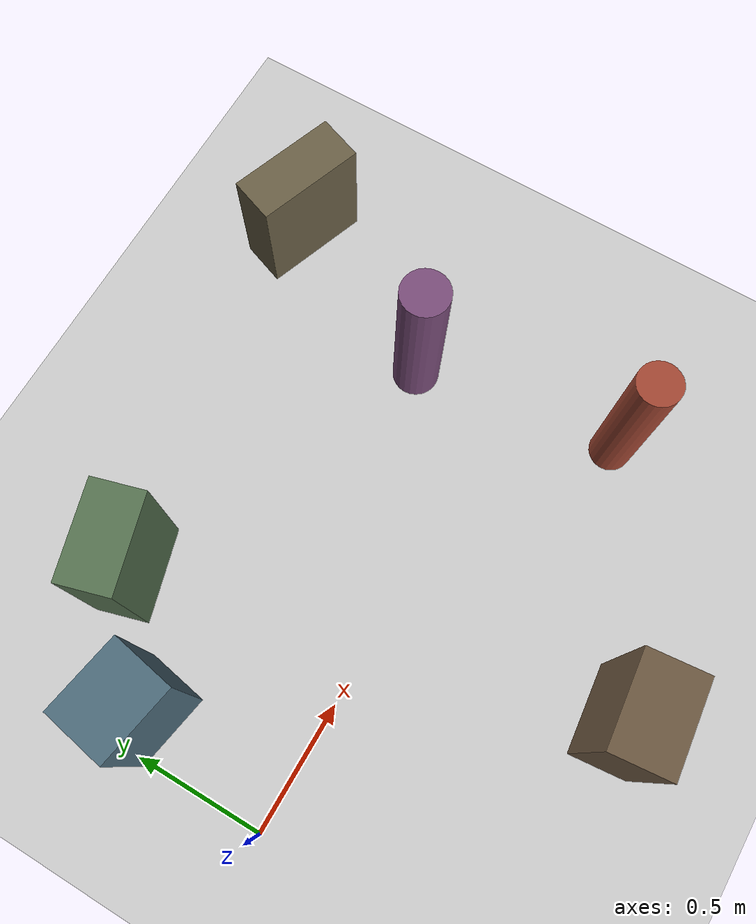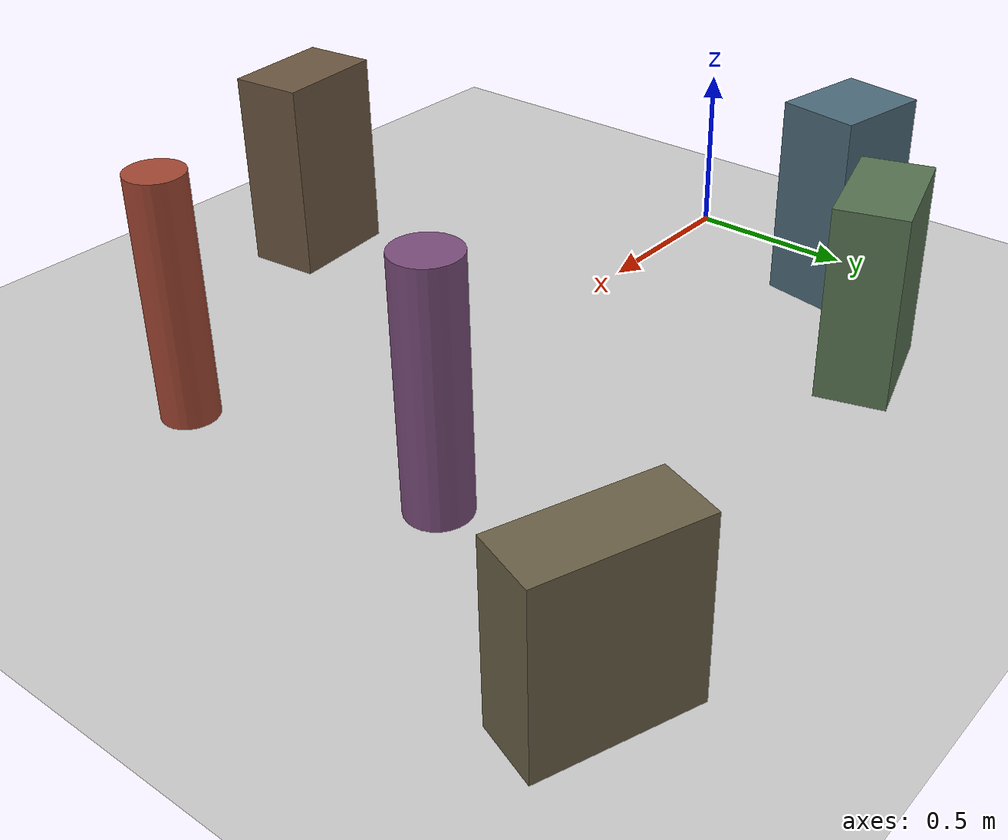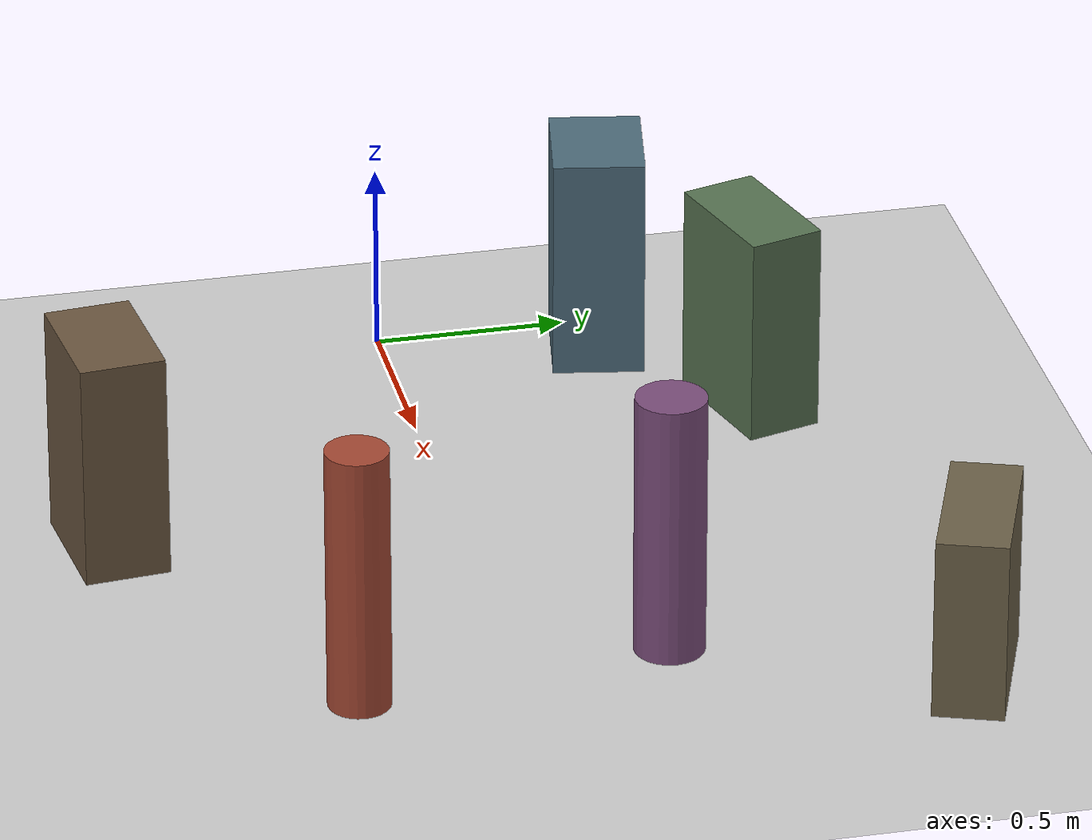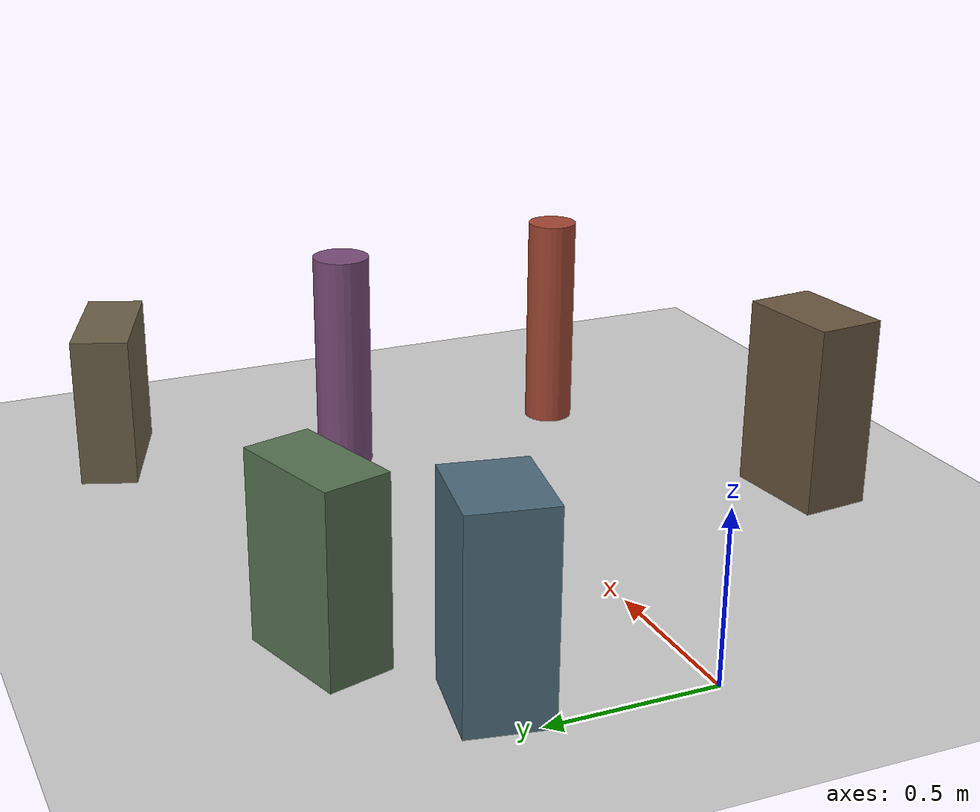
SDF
<sdf version='1.9'>
  <world name='follow_me_front_crossing_box_gate'>
    <plugin name='ignition::gazebo::systems::Physics' filename='libignition-gazebo-physics-system.so'/>
    <plugin name='ignition::gazebo::systems::UserCommands' filename='libignition-gazebo-user-commands-system.so'/>
    <plugin name='ignition::gazebo::systems::SceneBroadcaster' filename='libignition-gazebo-scene-broadcaster-system.so'/>
    <plugin name='ignition::gazebo::systems::Sensors' filename='libignition-gazebo-sensors-system.so'>
      <render_engine>ogre2</render_engine>
    </plugin>
    <physics name='default_physics' type='ode'>
      <max_step_size>0.001</max_step_size>
      <real_time_update_rate>1000</real_time_update_rate>
      <real_time_factor>1</real_time_factor>
    </physics>
    <scene>
      <ambient>0.45 0.45 0.45 1</ambient>
      <background>0.7 0.7 0.7 1</background>
      <shadows>true</shadows>
    </scene>
    <gravity>0 0 -9.8</gravity>
    <magnetic_field>6e-06 2.3e-05 -4.2e-05</magnetic_field>
    <atmosphere type='adiabatic'/>
    <model name='ground_plane'>
      <static>true</static>
      <link name='link'>
        <collision name='collision'>
          <geometry>
            <plane>
              <normal>0 0 1</normal>
              <size>100 100</size>
            </plane>
          </geometry>
          <surface>
            <friction>
              <ode/>
            </friction>
            <bounce/>
            <contact/>
          </surface>
        </collision>
        <visual name='visual'>
          <geometry>
            <plane>
              <normal>0 0 1</normal>
              <size>100 100</size>
            </plane>
          </geometry>
          <material>
            <ambient>0.8 0.8 0.8 1</ambient>
            <diffuse>0.8 0.8 0.8 1</diffuse>
          </material>
        </visual>
        <pose>0 0 0 0 -0 0</pose>
        <inertial>
          <pose>0 0 0 0 -0 0</pose>
          <mass>1</mass>
          <inertia>
            <ixx>1</ixx>
            <ixy>0</ixy>
            <ixz>0</ixz>
            <iyy>1</iyy>
            <iyz>0</iyz>
            <izz>1</izz>
          </inertia>
        </inertial>
        <enable_wind>false</enable_wind>
      </link>
      <pose>0 1 0 0 -0 0</pose>
      <self_collide>false</self_collide>
    </model>
    <model name='gate_box_near_right'>
      <static>true</static>
      <pose>0.95 -0.88 0.3 0 -0 0.1</pose>
      <link name='link'>
        <collision name='collision'>
          <geometry>
            <box>
              <size>0.34 0.22 0.6</size>
            </box>
          </geometry>
          <surface>
            <friction>
              <ode/>
            </friction>
            <bounce/>
            <contact/>
          </surface>
        </collision>
        <visual name='visual'>
          <visibility_flags>536870913</visibility_flags>
          <geometry>
            <box>
              <size>0.34 0.22 0.6</size>
            </box>
          </geometry>
          <material>
            <ambient>0.42 0.34 0.25 1</ambient>
            <diffuse>0.42 0.34 0.25 1</diffuse>
          </material>
        </visual>
        <pose>0 0 0 0 -0 0</pose>
        <inertial>
          <pose>0 0 0 0 -0 0</pose>
          <mass>1</mass>
          <inertia>
            <ixx>1</ixx>
            <ixy>0</ixy>
            <ixz>0</ixz>
            <iyy>1</iyy>
            <iyz>0</iyz>
            <izz>1</izz>
          </inertia>
        </inertial>
        <enable_wind>false</enable_wind>
      </link>
      <self_collide>false</self_collide>
    </model>
    <model name='gate_box_center_left'>
      <static>true</static>
      <pose>0.15 0.56 0.3 0 0 -0.18</pose>
      <link name='link'>
        <collision name='collision'>
          <geometry>
            <box>
              <size>0.3 0.24 0.6</size>
            </box>
          </geometry>
          <surface>
            <friction>
              <ode/>
            </friction>
            <bounce/>
            <contact/>
          </surface>
        </collision>
        <visual name='visual'>
          <visibility_flags>536870913</visibility_flags>
          <geometry>
            <box>
              <size>0.3 0.24 0.6</size>
            </box>
          </geometry>
          <material>
            <ambient>0.3 0.42 0.48 1</ambient>
            <diffuse>0.3 0.42 0.48 1</diffuse>
          </material>
        </visual>
        <pose>0 0 0 0 -0 0</pose>
        <inertial>
          <pose>0 0 0 0 -0 0</pose>
          <mass>1</mass>
          <inertia>
            <ixx>1</ixx>
            <ixy>0</ixy>
            <ixz>0</ixz>
            <iyy>1</iyy>
            <iyz>0</iyz>
            <izz>1</izz>
          </inertia>
        </inertial>
        <enable_wind>false</enable_wind>
      </link>
      <self_collide>false</self_collide>
    </model>
    <model name='gate_pillar_lower'>
      <static>true</static>
      <pose>1.85 -0.42 0.35 0 -0 0</pose>
      <link name='link'>
        <collision name='collision'>
          <geometry>
            <cylinder>
              <radius>0.080000000000000002</radius>
              <length>0.69999999999999996</length>
            </cylinder>
          </geometry>
          <surface>
            <friction>
              <ode/>
            </friction>
            <bounce/>
            <contact/>
          </surface>
        </collision>
        <visual name='visual'>
          <visibility_flags>536870913</visibility_flags>
          <geometry>
            <cylinder>
              <radius>0.080000000000000002</radius>
              <length>0.69999999999999996</length>
            </cylinder>
          </geometry>
          <material>
            <ambient>0.64 0.28 0.2 1</ambient>
            <diffuse>0.64 0.28 0.2 1</diffuse>
          </material>
        </visual>
        <pose>0 0 0 0 -0 0</pose>
        <inertial>
          <pose>0 0 0 0 -0 0</pose>
          <mass>1</mass>
          <inertia>
            <ixx>1</ixx>
            <ixy>0</ixy>
            <ixz>0</ixz>
            <iyy>1</iyy>
            <iyz>0</iyz>
            <izz>1</izz>
          </inertia>
        </inertial>
        <enable_wind>false</enable_wind>
      </link>
      <self_collide>false</self_collide>
    </model>
    <model name='gate_box_upper'>
      <static>true</static>
      <pose>0.55 0.88 0.28 0 -0 0.28</pose>
      <link name='link'>
        <collision name='collision'>
          <geometry>
            <box>
              <size>0.36 0.2 0.56</size>
            </box>
          </geometry>
          <surface>
            <friction>
              <ode/>
            </friction>
            <bounce/>
            <contact/>
          </surface>
        </collision>
        <visual name='visual'>
          <visibility_flags>536870913</visibility_flags>
          <geometry>
            <box>
              <size>0.36 0.2 0.56</size>
            </box>
          </geometry>
          <material>
            <ambient>0.34 0.45 0.32 1</ambient>
            <diffuse>0.34 0.45 0.32 1</diffuse>
          </material>
        </visual>
        <pose>0 0 0 0 -0 0</pose>
        <inertial>
          <pose>0 0 0 0 -0 0</pose>
          <mass>1</mass>
          <inertia>
            <ixx>1</ixx>
            <ixy>0</ixy>
            <ixz>0</ixz>
            <iyy>1</iyy>
            <iyz>0</iyz>
            <izz>1</izz>
          </inertia>
        </inertial>
        <enable_wind>false</enable_wind>
      </link>
      <self_collide>false</self_collide>
    </model>
    <model name='gate_pillar_exit'>
      <static>true</static>
      <pose>1.75 0.38 0.35 0 -0 0</pose>
      <link name='link'>
        <collision name='collision'>
          <geometry>
            <cylinder>
              <radius>0.089999999999999997</radius>
              <length>0.69999999999999996</length>
            </cylinder>
          </geometry>
          <surface>
            <friction>
              <ode/>
            </friction>
            <bounce/>
            <contact/>
          </surface>
        </collision>
        <visual name='visual'>
          <visibility_flags>536870913</visibility_flags>
          <geometry>
            <cylinder>
              <radius>0.089999999999999997</radius>
              <length>0.69999999999999996</length>
            </cylinder>
          </geometry>
          <material>
            <ambient>0.48 0.3 0.48 1</ambient>
            <diffuse>0.48 0.3 0.48 1</diffuse>
          </material>
        </visual>
        <pose>0 0 0 0 -0 0</pose>
        <inertial>
          <pose>0 0 0 0 -0 0</pose>
          <mass>1</mass>
          <inertia>
            <ixx>1</ixx>
            <ixy>0</ixy>
            <ixz>0</ixz>
            <iyy>1</iyy>
            <iyz>0</iyz>
            <izz>1</izz>
          </inertia>
        </inertial>
        <enable_wind>false</enable_wind>
      </link>
      <self_collide>false</self_collide>
    </model>
    <model name='gate_box_far_upper'>
      <static>true</static>
      <pose>2.05 1.08 0.24 0 0 -0.35</pose>
      <link name='link'>
        <collision name='collision'>
          <geometry>
            <box>
              <size>0.42 0.18 0.48</size>
            </box>
          </geometry>
          <surface>
            <friction>
              <ode/>
            </friction>
            <bounce/>
            <contact/>
          </surface>
        </collision>
        <visual name='visual'>
          <visibility_flags>536870913</visibility_flags>
          <geometry>
            <box>
              <size>0.42 0.18 0.48</size>
            </box>
          </geometry>
          <material>
            <ambient>0.42 0.38 0.28 1</ambient>
            <diffuse>0.42 0.38 0.28 1</diffuse>
          </material>
        </visual>
        <pose>0 0 0 0 -0 0</pose>
        <inertial>
          <pose>0 0 0 0 -0 0</pose>
          <mass>1</mass>
          <inertia>
            <ixx>1</ixx>
            <ixy>0</ixy>
            <ixz>0</ixz>
            <iyy>1</iyy>
            <iyz>0</iyz>
            <izz>1</izz>
          </inertia>
        </inertial>
        <enable_wind>false</enable_wind>
      </link>
      <self_collide>false</self_collide>
    </model>
    <light name='sun' type='directional'>
      <pose>0 0 10 0 -0 0</pose>
      <cast_shadows>true</cast_shadows>
      <intensity>1</intensity>
      <direction>-0.5 0.1 -0.9</direction>
      <diffuse>0.8 0.8 0.8 1</diffuse>
      <specular>0.2 0.2 0.2 1</specular>
      <attenuation>
        <range>1000</range>
        <linear>0.01</linear>
        <constant>0.90000000000000002</constant>
        <quadratic>0.001</quadratic>
      </attenuation>
      <spot>
        <inner_angle>0</inner_angle>
        <outer_angle>0</outer_angle>
        <falloff>0</falloff>
      </spot>
    </light>
  </world>
</sdf>
